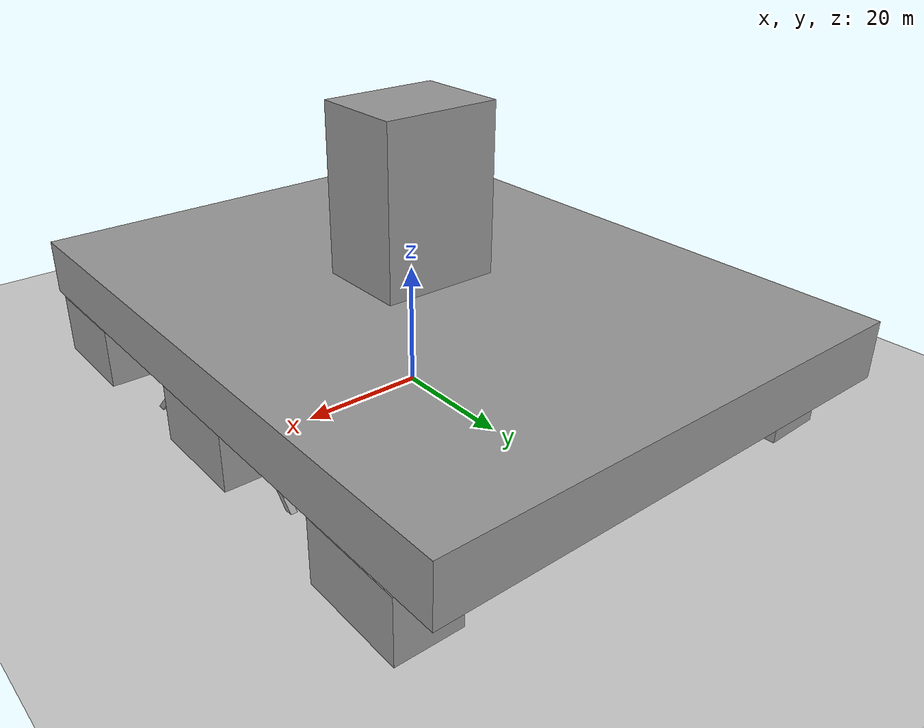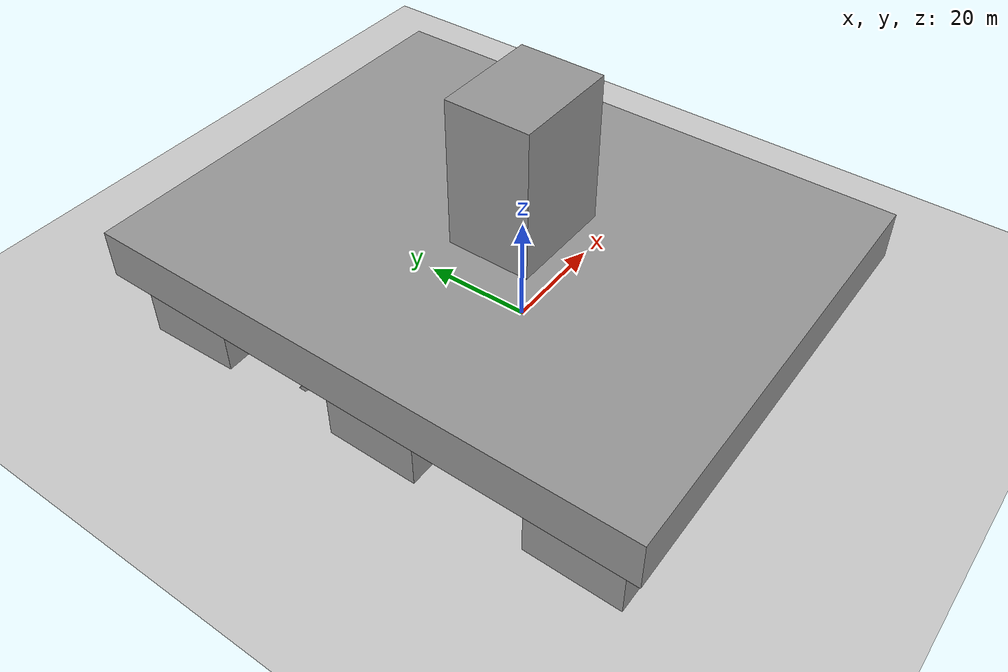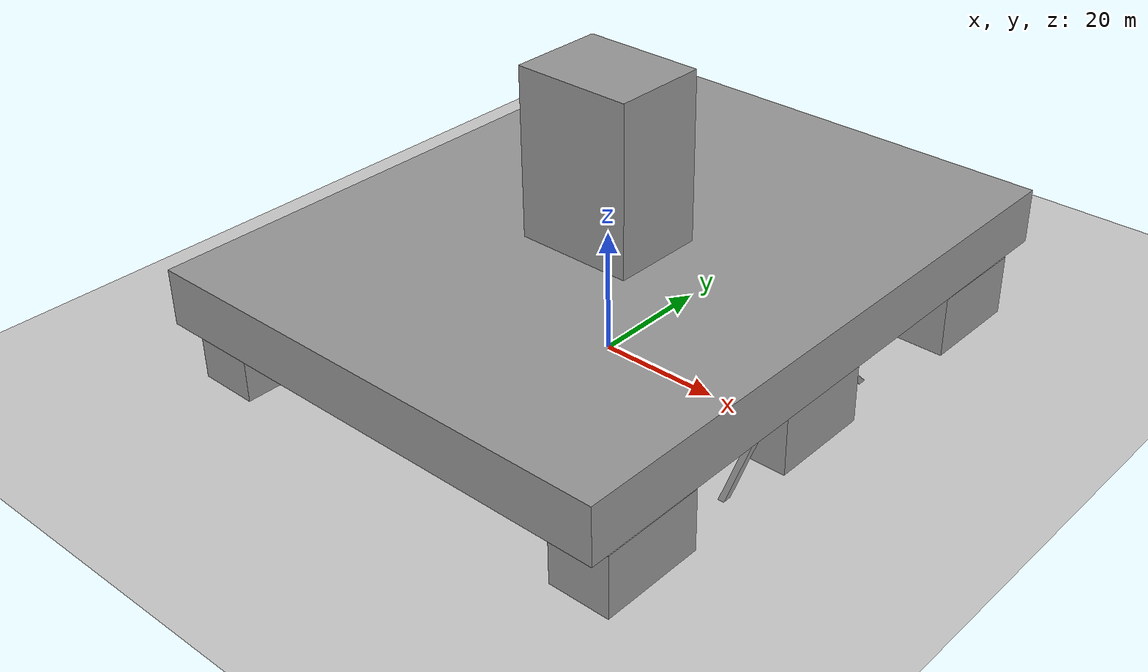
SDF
<sdf version="1.6">
 <world name="default">
  <light name="sun" type="directional">
   <pose>0 0 10 0 -0 0</pose>
   <diffuse>0.8 0.8 0.8 1</diffuse>
   <specular>0.2 0.2 0.2 1</specular>
   <attenuation>
    <range>1000</range>
    <constant>0.9</constant>
    <linear>0.01</linear>
    <quadratic>0.001</quadratic>
   </attenuation>
   <direction>-0.5 0.1 -0.9</direction>
  </light>
  <model name="ground_plane">
   <static>1</static>
   <link name="link">
    <collision name="collision">
     <geometry><plane><normal>0 0 1</normal><size>100 100</size></plane></geometry>
     <surface>
      <contact><collide_bitmask>65535</collide_bitmask></contact>
      <friction><ode><mu>100</mu><mu2>50</mu2></ode></friction>
     </surface>
    </collision>
    <visual name="visual">
     <cast_shadows>0</cast_shadows>
     <geometry><plane><normal>0 0 1</normal><size>100 100</size></plane></geometry>
     <material>
      <script><uri>file://media/materials/scripts/gazebo.material</uri><name>Gazebo/Grey</name></script>
     </material>
    </visual>
   </link>
  </model>
  <gravity>0 0 -9.8</gravity>
  <magnetic_field>6e-06 2.3e-05 -4.2e-05</magnetic_field>
  <atmosphere type="adiabatic"/>
  <physics name="default_physics" default="0" type="ode">
   <max_step_size>0.001</max_step_size>
   <real_time_factor>1</real_time_factor>
   <real_time_update_rate>1000</real_time_update_rate>
  </physics>
  <scene><ambient>0.4 0.4 0.4 1</ambient><background>0.7 0.7 0.7 1</background><shadows>1</shadows></scene>
  <spherical_coordinates>
   <surface_model>EARTH_WGS84</surface_model>
   <latitude_deg>0</latitude_deg>
   <longitude_deg>0</longitude_deg>
   <elevation>0</elevation>
   <heading_deg>0</heading_deg>
  </spherical_coordinates>
  <model name="unit_box">
   <static>1</static>
   <pose>-34.9898 -37 5 1e-06 -0 -0.006221</pose>
   <link name="link">
    <inertial>
     <mass>1</mass>
     <inertia>
      <ixx>0.166667</ixx>
      <ixy>0</ixy>
      <ixz>0</ixz>
      <iyy>0.166667</iyy>
      <iyz>0</iyz>
      <izz>0.166667</izz>
     </inertia>
    </inertial>
    <collision name="collision"><geometry><box><size>10 17 10</size></box></geometry></collision>
    <visual name="visual">
     <geometry><box><size>10 17 10</size></box></geometry>
     <material>
      <script><name>Gazebo/Grey</name><uri>file://media/materials/scripts/gazebo.material</uri></script>
     </material>
    </visual>
   </link>
  </model>
  <model name="unit_box_clone">
   <static>1</static>
   <pose>-35.0075 0.014639 5 0 0 -0.001893</pose>
   <link name="link">
    <inertial>
     <mass>1</mass>
     <inertia>
      <ixx>0.166667</ixx>
      <ixy>0</ixy>
      <ixz>0</ixz>
      <iyy>0.166667</iyy>
      <iyz>0</iyz>
      <izz>0.166667</izz>
     </inertia>
    </inertial>
    <collision name="collision"><geometry><box><size>10 17 10</size></box></geometry></collision>
    <visual name="visual">
     <geometry><box><size>10 17 10</size></box></geometry>
     <material>
      <script><name>Gazebo/Grey</name><uri>file://media/materials/scripts/gazebo.material</uri></script>
     </material>
    </visual>
   </link>
  </model>
  <model name="unit_box_clone_0">
   <static>1</static>
   <pose>-35.0085 40.0385 5 0 1e-06 0.030617</pose>
   <link name="unit_box_clone_0::unit_box_clone_0::link">
    <inertial>
     <mass>1</mass>
     <inertia>
      <ixx>0.166667</ixx>
      <ixy>0</ixy>
      <ixz>0</ixz>
      <iyy>0.166667</iyy>
      <iyz>0</iyz>
      <izz>0.166667</izz>
     </inertia>
    </inertial>
    <collision name="collision"><geometry><box><size>10 17 10</size></box></geometry></collision>
    <visual name="visual">
     <geometry><box><size>10 17 10</size></box></geometry>
     <material>
      <script><name>Gazebo/Grey</name><uri>file://media/materials/scripts/gazebo.material</uri></script>
     </material>
    </visual>
   </link>
  </model>
  <model name="unit_box_clone_1">
   <static>1</static>
   <pose>34.9964 -37 5 0 -0 0.002216</pose>
   <link name="link">
    <inertial>
     <mass>1</mass>
     <inertia>
      <ixx>0.166667</ixx>
      <ixy>0</ixy>
      <ixz>0</ixz>
      <iyy>0.166667</iyy>
      <iyz>0</iyz>
      <izz>0.166667</izz>
     </inertia>
    </inertial>
    <collision name="collision"><geometry><box><size>10 17 10</size></box></geometry></collision>
    <visual name="visual">
     <geometry><box><size>10 17 10</size></box></geometry>
     <material>
      <script><name>Gazebo/Grey</name><uri>file://media/materials/scripts/gazebo.material</uri></script>
     </material>
    </visual>
   </link>
  </model>
  <model name="unit_box_clone_2">
   <static>1</static>
   <pose>34.3874 0.16047 5 0 -0 0.000667</pose>
   <link name="link">
    <inertial>
     <mass>1</mass>
     <inertia>
      <ixx>0.166667</ixx>
      <ixy>0</ixy>
      <ixz>0</ixz>
      <iyy>0.166667</iyy>
      <iyz>0</iyz>
      <izz>0.166667</izz>
     </inertia>
    </inertial>
    <collision name="collision"><geometry><box><size>10 17 10</size></box></geometry></collision>
    <visual name="visual">
     <geometry><box><size>10 17 10</size></box></geometry>
     <material>
      <script><name>Gazebo/Grey</name><uri>file://media/materials/scripts/gazebo.material</uri></script>
     </material>
    </visual>
   </link>
  </model>
  <model name="unit_box_clone_3">
   <static>1</static>
   <pose>35.0005 40.0025 5 2e-06 -0 -0.008004</pose>
   <link name="link">
    <inertial>
     <mass>1</mass>
     <inertia>
      <ixx>0.166667</ixx>
      <ixy>0</ixy>
      <ixz>0</ixz>
      <iyy>0.166667</iyy>
      <iyz>0</iyz>
      <izz>0.166667</izz>
     </inertia>
    </inertial>
    <collision name="collision"><geometry><box><size>10 17 10</size></box></geometry></collision>
    <visual name="visual">
     <geometry><box><size>10 17 10</size></box></geometry>
     <material>
      <script><name>Gazebo/Grey</name><uri>file://media/materials/scripts/gazebo.material</uri></script>
     </material>
    </visual>
   </link>
  </model>
  <model name="unit_box_0">
   <static>1</static>
   <pose>-0.779903 3.34051 14.6451 0 -0 0</pose>
   <link name="unit_box_0::link">
    <gravity>0</gravity>
    <inertial>
     <mass>0.1</mass>
     <inertia>
      <ixx>0.166667</ixx>
      <ixy>0</ixy>
      <ixz>0</ixz>
      <iyy>0.166667</iyy>
      <iyz>0</iyz>
      <izz>0.166667</izz>
     </inertia>
    </inertial>
    <collision name="collision"><geometry><box><size>81.455 103.378 9.1204</size></box></geometry></collision>
    <visual name="visual">
     <geometry><box><size>81.455 103.378 9.1204</size></box></geometry>
     <material>
      <script><name>Gazebo/Grey</name><uri>file://media/materials/scripts/gazebo.material</uri></script>
     </material>
    </visual>
   </link>
  </model>
  <model name="unit_box_1">
   <static>1</static>
   <pose>-0.012495 -0.05623 32.9125 2e-06 -2e-05 -0.005014</pose>
   <link name="link">
    <inertial>
     <mass>1</mass>
     <inertia>
      <ixx>0.166667</ixx>
      <ixy>0</ixy>
      <ixz>0</ixz>
      <iyy>0.166667</iyy>
      <iyz>0</iyz>
      <izz>0.166667</izz>
     </inertia>
    </inertial>
    <collision name="collision"><geometry><box><size>19.5881 15.3994 27.4146</size></box></geometry></collision>
    <visual name="visual">
     <geometry><box><size>19.5881 15.3994 27.4146</size></box></geometry>
     <material>
      <script><name>Gazebo/Grey</name><uri>file://media/materials/scripts/gazebo.material</uri></script>
     </material>
    </visual>
   </link>
  </model>
  <model name="unit_box_2">
   <static>1</static>
   <pose>36.1187 -12.4088 5.05491 -0.780073 0 0</pose>
   <link name="link">
    <inertial>
     <mass>1</mass>
     <inertia>
      <ixx>0.166667</ixx>
      <ixy>0</ixy>
      <ixz>0</ixz>
      <iyy>0.166667</iyy>
      <iyz>0</iyz>
      <izz>0.166667</izz>
     </inertia>
    </inertial>
    <collision name="collision"><geometry><box><size>1 1 18.81</size></box></geometry></collision>
    <visual name="visual">
     <geometry><box><size>1 1 18.81</size></box></geometry>
     <material>
      <script><name>Gazebo/Grey</name><uri>file://media/materials/scripts/gazebo.material</uri></script>
     </material>
    </visual>
   </link>
  </model>
  <model name="unit_box_2_clone">
   <static>1</static>
   <pose>-33.8575 -11.5476 5.76183 -0.780073 0 0</pose>
   <link name="link">
    <inertial>
     <mass>1</mass>
     <inertia>
      <ixx>0.166667</ixx>
      <ixy>0</ixy>
      <ixz>0</ixz>
      <iyy>0.166667</iyy>
      <iyz>0</iyz>
      <izz>0.166667</izz>
     </inertia>
    </inertial>
    <collision name="collision"><geometry><box><size>1 1 18.81</size></box></geometry></collision>
    <visual name="visual">
     <geometry><box><size>1 1 18.81</size></box></geometry>
     <material>
      <script><name>Gazebo/Grey</name><uri>file://media/materials/scripts/gazebo.material</uri></script>
     </material>
    </visual>
   </link>
  </model>
  <model name="unit_box_2_clone_0">
   <static>1</static>
   <pose>34.2588 12.3532 5.16538 -2.35019 0 0</pose>
   <link name="link">
    <inertial>
     <mass>1</mass>
     <inertia>
      <ixx>0.166667</ixx>
      <ixy>0</ixy>
      <ixz>0</ixz>
      <iyy>0.166667</iyy>
      <iyz>0</iyz>
      <izz>0.166667</izz>
     </inertia>
    </inertial>
    <collision name="collision"><geometry><box><size>1 1 18.81</size></box></geometry></collision>
    <visual name="visual">
     <geometry><box><size>1 1 18.81</size></box></geometry>
     <material>
      <script><name>Gazebo/Grey</name><uri>file://media/materials/scripts/gazebo.material</uri></script>
     </material>
    </visual>
   </link>
  </model>
  <model name="unit_box_2_clone_0_clone">
   <static>1</static>
   <pose>-35.4323 13.3145 5.16538 -2.35019 0 0</pose>
   <link name="link">
    <inertial>
     <mass>1</mass>
     <inertia>
      <ixx>0.166667</ixx>
      <ixy>0</ixy>
      <ixz>0</ixz>
      <iyy>0.166667</iyy>
      <iyz>0</iyz>
      <izz>0.166667</izz>
     </inertia>
    </inertial>
    <collision name="collision"><geometry><box><size>1 1 18.81</size></box></geometry></collision>
    <visual name="visual">
     <geometry><box><size>1 1 18.81</size></box></geometry>
     <material>
      <script><name>Gazebo/Grey</name><uri>file://media/materials/scripts/gazebo.material</uri></script>
     </material>
    </visual>
   </link>
  </model>
 </world>
</sdf>
